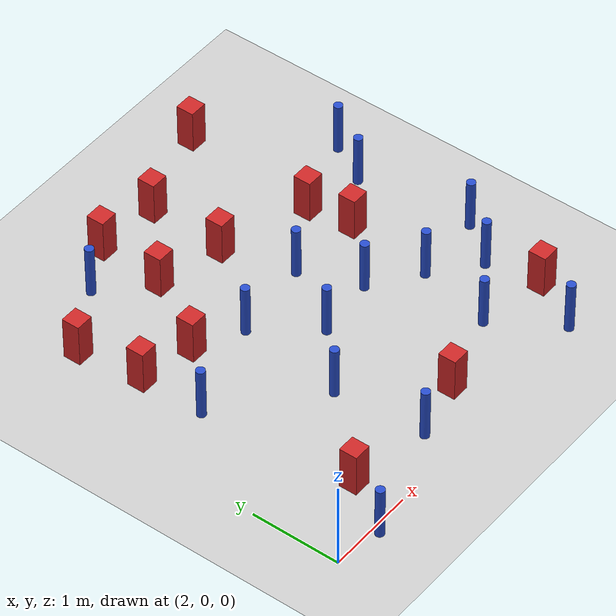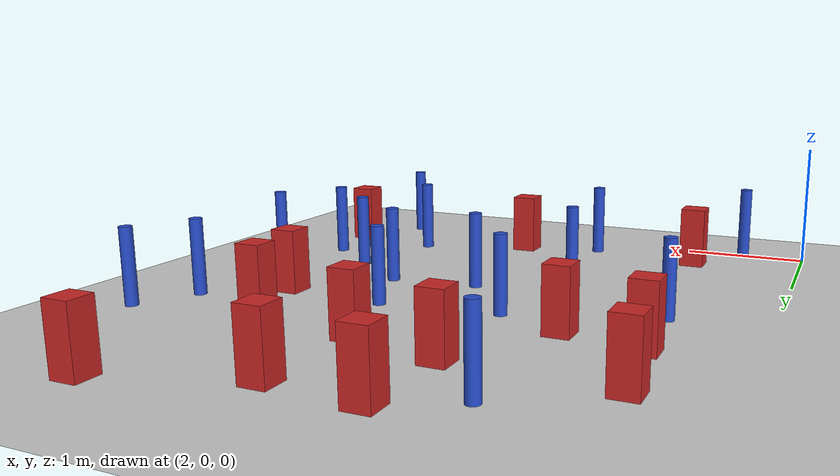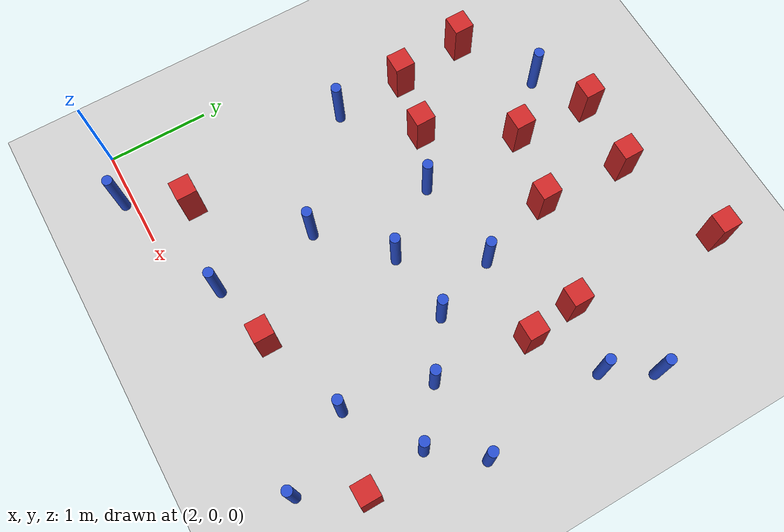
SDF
<sdf version="1.6">
 <world name="default">
  <model name="ground_plane">
   <static>1</static>
   <link name="link">
    <collision name="collision">
     <geometry><plane><normal>0 0 1</normal><size>100 100</size></plane></geometry>
     <surface><friction><ode><mu>100</mu><mu2>50</mu2></ode></friction></surface>
    </collision>
    <visual name="visual">
     <cast_shadows>0</cast_shadows>
     <geometry><plane><normal>0 0 1</normal><size>100 100</size></plane></geometry>
     <material>
      <ambient>1.0 1.0 1.0 1.0</ambient>
      <diffuse>0.8 0.8 0.8 1.0</diffuse>
      <specular>0.01 0.01 0.01 1.000000</specular>
     </material>
    </visual>
   </link>
  </model>
  <model name="square_post_obstacle4">
   <static>true</static>
   <pose>2.62261659096 3.62090149515 8.22691968438e-08 7.2212513382e-06 -7.54495500217e-07 2.29674213826e-05</pose>
   <link name="link">
    <pose>0 0 0.25 0 -0 0</pose>
    <inertial>
     <mass>100</mass>
     <inertia>
      <ixx>0.166667</ixx>
      <ixy>0</ixy>
      <ixz>0</ixz>
      <iyy>0.166667</iyy>
      <iyz>0</iyz>
      <izz>0.166667</izz>
     </inertia>
    </inertial>
    <collision name="collision"><geometry><box><size>.2 .2 .5</size></box></geometry></collision>
    <visual name="visual">
     <geometry><box><size>.2 .2 .5</size></box></geometry>
     <material>
      <script><name>Gazebo/Red</name><uri>file://media/materials/scripts/gazebo.material</uri></script>
     </material>
    </visual>
   </link>
  </model>
  <model name="square_post_obstacle18">
   <static>true</static>
   <pose>2.70620414548 2.89905259573 8.22691968438e-08 7.2212513382e-06 -7.54495500217e-07 2.29674213826e-05</pose>
   <link name="link">
    <pose>0 0 0.25 0 -0 0</pose>
    <inertial>
     <mass>100</mass>
     <inertia>
      <ixx>0.166667</ixx>
      <ixy>0</ixy>
      <ixz>0</ixz>
      <iyy>0.166667</iyy>
      <iyz>0</iyz>
      <izz>0.166667</izz>
     </inertia>
    </inertial>
    <collision name="collision"><geometry><box><size>.2 .2 .5</size></box></geometry></collision>
    <visual name="visual">
     <geometry><box><size>.2 .2 .5</size></box></geometry>
     <material>
      <script><name>Gazebo/Red</name><uri>file://media/materials/scripts/gazebo.material</uri></script>
     </material>
    </visual>
   </link>
  </model>
  <model name="square_post_obstacle21">
   <static>true</static>
   <pose>2.87978851423 0.481293469229 8.22691968438e-08 7.2212513382e-06 -7.54495500217e-07 2.29674213826e-05</pose>
   <link name="link">
    <pose>0 0 0.25 0 -0 0</pose>
    <inertial>
     <mass>100</mass>
     <inertia>
      <ixx>0.166667</ixx>
      <ixy>0</ixy>
      <ixz>0</ixz>
      <iyy>0.166667</iyy>
      <iyz>0</iyz>
      <izz>0.166667</izz>
     </inertia>
    </inertial>
    <collision name="collision"><geometry><box><size>.2 .2 .5</size></box></geometry></collision>
    <visual name="visual">
     <geometry><box><size>.2 .2 .5</size></box></geometry>
     <material>
      <script><name>Gazebo/Red</name><uri>file://media/materials/scripts/gazebo.material</uri></script>
     </material>
    </visual>
   </link>
  </model>
  <model name="pole_obstacle16">
   <static>true</static>
   <pose>5.79698424891 0.0809831116426 2.88873142074e-08 -9.90536689727e-09 4.60219948992e-07 -1.20965994958e-07</pose>
   <link name="link">
    <pose>0 0 0.3 0 -0 0</pose>
    <inertial>
     <mass>1</mass>
     <inertia><ixx>0.145833</ixx><ixy>0</ixy><ixz>0</ixz><iyy>0.145833</iyy><iyz>0</iyz><izz>0.125</izz></inertia>
    </inertial>
    <collision name="collision">
     <geometry><cylinder><radius>0.05</radius><length>.6</length></cylinder></geometry>
    </collision>
    <visual name="visual">
     <geometry><cylinder><radius>0.05</radius><length>.6</length></cylinder></geometry>
     <material>
      <script><name>Gazebo/Blue</name><uri>file://media/materials/scripts/gazebo.material</uri></script>
     </material>
    </visual>
   </link>
  </model>
  <model name="pole_obstacle31">
   <static>true</static>
   <pose>5.54209693001 1.62750616036 2.88873142074e-08 -9.90536689445e-09 4.60219948999e-07 -1.20965994956e-07</pose>
   <link name="link">
    <pose>0 0 0.3 0 -0 0</pose>
    <inertial>
     <mass>1</mass>
     <inertia><ixx>0.145833</ixx><ixy>0</ixy><ixz>0</ixz><iyy>0.145833</iyy><iyz>0</iyz><izz>0.125</izz></inertia>
    </inertial>
    <collision name="collision">
     <geometry><cylinder><radius>0.05</radius><length>.6</length></cylinder></geometry>
    </collision>
    <visual name="visual">
     <geometry><cylinder><radius>0.05</radius><length>.6</length></cylinder></geometry>
     <material>
      <script><name>Gazebo/Blue</name><uri>file://media/materials/scripts/gazebo.material</uri></script>
     </material>
    </visual>
   </link>
  </model>
  <model name="pole_obstacle47">
   <static>true</static>
   <pose>6.20660354552 2.96202624904 2.88873142074e-08 -9.90536690245e-09 4.6021994898e-07 -1.20965994966e-07</pose>
   <link name="link">
    <pose>0 0 0.3 0 -0 0</pose>
    <inertial>
     <mass>1</mass>
     <inertia><ixx>0.145833</ixx><ixy>0</ixy><ixz>0</ixz><iyy>0.145833</iyy><iyz>0</iyz><izz>0.125</izz></inertia>
    </inertial>
    <collision name="collision">
     <geometry><cylinder><radius>0.05</radius><length>.6</length></cylinder></geometry>
    </collision>
    <visual name="visual">
     <geometry><cylinder><radius>0.05</radius><length>.6</length></cylinder></geometry>
     <material>
      <script><name>Gazebo/Blue</name><uri>file://media/materials/scripts/gazebo.material</uri></script>
     </material>
    </visual>
   </link>
  </model>
  <model name="square_post_obstacle50">
   <static>true</static>
   <pose>6.10516463715 0.632587236259 8.22691968438e-08 7.2212513382e-06 -7.54495500217e-07 2.29674213826e-05</pose>
   <link name="link">
    <pose>0 0 0.25 0 -0 0</pose>
    <inertial>
     <mass>100</mass>
     <inertia>
      <ixx>0.166667</ixx>
      <ixy>0</ixy>
      <ixz>0</ixz>
      <iyy>0.166667</iyy>
      <iyz>0</iyz>
      <izz>0.166667</izz>
     </inertia>
    </inertial>
    <collision name="collision"><geometry><box><size>.2 .2 .5</size></box></geometry></collision>
    <visual name="visual">
     <geometry><box><size>.2 .2 .5</size></box></geometry>
     <material>
      <script><name>Gazebo/Red</name><uri>file://media/materials/scripts/gazebo.material</uri></script>
     </material>
    </visual>
   </link>
  </model>
  <model name="pole_obstacle53">
   <static>true</static>
   <pose>6.46365630959 3.40705639726 2.88873142074e-08 -9.90536690245e-09 4.6021994898e-07 -1.20965994966e-07</pose>
   <link name="link">
    <pose>0 0 0.3 0 -0 0</pose>
    <inertial>
     <mass>1</mass>
     <inertia><ixx>0.145833</ixx><ixy>0</ixy><ixz>0</ixz><iyy>0.145833</iyy><iyz>0</iyz><izz>0.125</izz></inertia>
    </inertial>
    <collision name="collision">
     <geometry><cylinder><radius>0.05</radius><length>.6</length></cylinder></geometry>
    </collision>
    <visual name="visual">
     <geometry><cylinder><radius>0.05</radius><length>.6</length></cylinder></geometry>
     <material>
      <script><name>Gazebo/Blue</name><uri>file://media/materials/scripts/gazebo.material</uri></script>
     </material>
    </visual>
   </link>
  </model>
  <model name="pole_obstacle59">
   <static>true</static>
   <pose>3.71259882639 1.35113123196 2.88873142074e-08 -9.90536689395e-09 4.60219949e-07 -1.20965994953e-07</pose>
   <link name="link">
    <pose>0 0 0.3 0 -0 0</pose>
    <inertial>
     <mass>1</mass>
     <inertia><ixx>0.145833</ixx><ixy>0</ixy><ixz>0</ixz><iyy>0.145833</iyy><iyz>0</iyz><izz>0.125</izz></inertia>
    </inertial>
    <collision name="collision">
     <geometry><cylinder><radius>0.05</radius><length>.6</length></cylinder></geometry>
    </collision>
    <visual name="visual">
     <geometry><cylinder><radius>0.05</radius><length>.6</length></cylinder></geometry>
     <material>
      <script><name>Gazebo/Blue</name><uri>file://media/materials/scripts/gazebo.material</uri></script>
     </material>
    </visual>
   </link>
  </model>
  <model name="square_post_obstacle65">
   <static>true</static>
   <pose>3.31616375345 2.77729734283 8.22691968438e-08 7.2212513382e-06 -7.54495500217e-07 2.29674213826e-05</pose>
   <link name="link">
    <pose>0 0 0.25 0 -0 0</pose>
    <inertial>
     <mass>100</mass>
     <inertia>
      <ixx>0.166667</ixx>
      <ixy>0</ixy>
      <ixz>0</ixz>
      <iyy>0.166667</iyy>
      <iyz>0</iyz>
      <izz>0.166667</izz>
     </inertia>
    </inertial>
    <collision name="collision"><geometry><box><size>.2 .2 .5</size></box></geometry></collision>
    <visual name="visual">
     <geometry><box><size>.2 .2 .5</size></box></geometry>
     <material>
      <script><name>Gazebo/Red</name><uri>file://media/materials/scripts/gazebo.material</uri></script>
     </material>
    </visual>
   </link>
  </model>
  <model name="pole_obstacle73">
   <static>true</static>
   <pose>5.03723471642 1.99553160137 2.88873142074e-08 -9.90536689273e-09 4.60219949003e-07 -1.20965994953e-07</pose>
   <link name="link">
    <pose>0 0 0.3 0 -0 0</pose>
    <inertial>
     <mass>1</mass>
     <inertia><ixx>0.145833</ixx><ixy>0</ixy><ixz>0</ixz><iyy>0.145833</iyy><iyz>0</iyz><izz>0.125</izz></inertia>
    </inertial>
    <collision name="collision">
     <geometry><cylinder><radius>0.05</radius><length>.6</length></cylinder></geometry>
    </collision>
    <visual name="visual">
     <geometry><cylinder><radius>0.05</radius><length>.6</length></cylinder></geometry>
     <material>
      <script><name>Gazebo/Blue</name><uri>file://media/materials/scripts/gazebo.material</uri></script>
     </material>
    </visual>
   </link>
  </model>
  <model name="square_post_obstacle80">
   <static>true</static>
   <pose>5.55546648257 3.09088001525 8.22691968438e-08 7.2212513382e-06 -7.54495500217e-07 2.29674213826e-05</pose>
   <link name="link">
    <pose>0 0 0.25 0 -0 0</pose>
    <inertial>
     <mass>100</mass>
     <inertia>
      <ixx>0.166667</ixx>
      <ixy>0</ixy>
      <ixz>0</ixz>
      <iyy>0.166667</iyy>
      <iyz>0</iyz>
      <izz>0.166667</izz>
     </inertia>
    </inertial>
    <collision name="collision"><geometry><box><size>.2 .2 .5</size></box></geometry></collision>
    <visual name="visual">
     <geometry><box><size>.2 .2 .5</size></box></geometry>
     <material>
      <script><name>Gazebo/Red</name><uri>file://media/materials/scripts/gazebo.material</uri></script>
     </material>
    </visual>
   </link>
  </model>
  <model name="pole_obstacle94">
   <static>true</static>
   <pose>4.78990463097 2.6457673171 2.88873142074e-08 -9.90536690245e-09 4.6021994898e-07 -1.20965994966e-07</pose>
   <link name="link">
    <pose>0 0 0.3 0 -0 0</pose>
    <inertial>
     <mass>1</mass>
     <inertia><ixx>0.145833</ixx><ixy>0</ixy><ixz>0</ixz><iyy>0.145833</iyy><iyz>0</iyz><izz>0.125</izz></inertia>
    </inertial>
    <collision name="collision">
     <geometry><cylinder><radius>0.05</radius><length>.6</length></cylinder></geometry>
    </collision>
    <visual name="visual">
     <geometry><cylinder><radius>0.05</radius><length>.6</length></cylinder></geometry>
     <material>
      <script><name>Gazebo/Blue</name><uri>file://media/materials/scripts/gazebo.material</uri></script>
     </material>
    </visual>
   </link>
  </model>
  <model name="pole_obstacle96">
   <static>true</static>
   <pose>5.3490869151 0.785331650575 2.88873142074e-08 -9.90536689837e-09 4.60219948989e-07 -1.2096599496e-07</pose>
   <link name="link">
    <pose>0 0 0.3 0 -0 0</pose>
    <inertial>
     <mass>1</mass>
     <inertia><ixx>0.145833</ixx><ixy>0</ixy><ixz>0</ixz><iyy>0.145833</iyy><iyz>0</iyz><izz>0.125</izz></inertia>
    </inertial>
    <collision name="collision">
     <geometry><cylinder><radius>0.05</radius><length>.6</length></cylinder></geometry>
    </collision>
    <visual name="visual">
     <geometry><cylinder><radius>0.05</radius><length>.6</length></cylinder></geometry>
     <material>
      <script><name>Gazebo/Blue</name><uri>file://media/materials/scripts/gazebo.material</uri></script>
     </material>
    </visual>
   </link>
  </model>
  <model name="square_post_obstacle92">
   <static>true</static>
   <pose>4.59211533059 4.29067833879 8.22691968438e-08 7.2212513382e-06 -7.54495500217e-07 2.29674213826e-05</pose>
   <link name="link">
    <pose>0 0 0.25 0 -0 0</pose>
    <inertial>
     <mass>100</mass>
     <inertia>
      <ixx>0.166667</ixx>
      <ixy>0</ixy>
      <ixz>0</ixz>
      <iyy>0.166667</iyy>
      <iyz>0</iyz>
      <izz>0.166667</izz>
     </inertia>
    </inertial>
    <collision name="collision"><geometry><box><size>.2 .2 .5</size></box></geometry></collision>
    <visual name="visual">
     <geometry><box><size>.2 .2 .5</size></box></geometry>
     <material>
      <script><name>Gazebo/Red</name><uri>file://media/materials/scripts/gazebo.material</uri></script>
     </material>
    </visual>
   </link>
  </model>
  <model name="pole_obstacle108">
   <static>true</static>
   <pose>3.79269333524 0.333719324461 2.88873142074e-08 -9.90536689307e-09 4.60219949002e-07 -1.20965994954e-07</pose>
   <link name="link">
    <pose>0 0 0.3 0 -0 0</pose>
    <inertial>
     <mass>1</mass>
     <inertia><ixx>0.145833</ixx><ixy>0</ixy><ixz>0</ixz><iyy>0.145833</iyy><iyz>0</iyz><izz>0.125</izz></inertia>
    </inertial>
    <collision name="collision">
     <geometry><cylinder><radius>0.05</radius><length>.6</length></cylinder></geometry>
    </collision>
    <visual name="visual">
     <geometry><cylinder><radius>0.05</radius><length>.6</length></cylinder></geometry>
     <material>
      <script><name>Gazebo/Blue</name><uri>file://media/materials/scripts/gazebo.material</uri></script>
     </material>
    </visual>
   </link>
  </model>
  <model name="pole_obstacle113">
   <static>true</static>
   <pose>4.3310178954 1.9167147348 2.88873142074e-08 -9.90536689445e-09 4.60219948999e-07 -1.20965994956e-07</pose>
   <link name="link">
    <pose>0 0 0.3 0 -0 0</pose>
    <inertial>
     <mass>1</mass>
     <inertia><ixx>0.145833</ixx><ixy>0</ixy><ixz>0</ixz><iyy>0.145833</iyy><iyz>0</iyz><izz>0.125</izz></inertia>
    </inertial>
    <collision name="collision">
     <geometry><cylinder><radius>0.05</radius><length>.6</length></cylinder></geometry>
    </collision>
    <visual name="visual">
     <geometry><cylinder><radius>0.05</radius><length>.6</length></cylinder></geometry>
     <material>
      <script><name>Gazebo/Blue</name><uri>file://media/materials/scripts/gazebo.material</uri></script>
     </material>
    </visual>
   </link>
  </model>
  <model name="square_post_obstacle113">
   <static>true</static>
   <pose>4.55620565589 3.40657804077 8.22691968438e-08 7.2212513382e-06 -7.54495500217e-07 2.29674213826e-05</pose>
   <link name="link">
    <pose>0 0 0.25 0 -0 0</pose>
    <inertial>
     <mass>100</mass>
     <inertia>
      <ixx>0.166667</ixx>
      <ixy>0</ixy>
      <ixz>0</ixz>
      <iyy>0.166667</iyy>
      <iyz>0</iyz>
      <izz>0.166667</izz>
     </inertia>
    </inertial>
    <collision name="collision"><geometry><box><size>.2 .2 .5</size></box></geometry></collision>
    <visual name="visual">
     <geometry><box><size>.2 .2 .5</size></box></geometry>
     <material>
      <script><name>Gazebo/Red</name><uri>file://media/materials/scripts/gazebo.material</uri></script>
     </material>
    </visual>
   </link>
  </model>
  <model name="pole_obstacle138">
   <static>true</static>
   <pose>3.85060433284 2.53694885012 2.88873142074e-08 -9.90536690232e-09 4.6021994898e-07 -1.20965994968e-07</pose>
   <link name="link">
    <pose>0 0 0.3 0 -0 0</pose>
    <inertial>
     <mass>1</mass>
     <inertia><ixx>0.145833</ixx><ixy>0</ixy><ixz>0</ixz><iyy>0.145833</iyy><iyz>0</iyz><izz>0.125</izz></inertia>
    </inertial>
    <collision name="collision">
     <geometry><cylinder><radius>0.05</radius><length>.6</length></cylinder></geometry>
    </collision>
    <visual name="visual">
     <geometry><cylinder><radius>0.05</radius><length>.6</length></cylinder></geometry>
     <material>
      <script><name>Gazebo/Blue</name><uri>file://media/materials/scripts/gazebo.material</uri></script>
     </material>
    </visual>
   </link>
  </model>
  <model name="square_post_obstacle128">
   <static>true</static>
   <pose>3.82188614736 3.58661518218 8.22691968438e-08 7.2212513382e-06 -7.54495500217e-07 2.29674213826e-05</pose>
   <link name="link">
    <pose>0 0 0.25 0 -0 0</pose>
    <inertial>
     <mass>100</mass>
     <inertia>
      <ixx>0.166667</ixx>
      <ixy>0</ixy>
      <ixz>0</ixz>
      <iyy>0.166667</iyy>
      <iyz>0</iyz>
      <izz>0.166667</izz>
     </inertia>
    </inertial>
    <collision name="collision"><geometry><box><size>.2 .2 .5</size></box></geometry></collision>
    <visual name="visual">
     <geometry><box><size>.2 .2 .5</size></box></geometry>
     <material>
      <script><name>Gazebo/Red</name><uri>file://media/materials/scripts/gazebo.material</uri></script>
     </material>
    </visual>
   </link>
  </model>
  <model name="square_post_obstacle131">
   <static>true</static>
   <pose>5.61900257603 2.58503649393 8.22691968438e-08 7.2212513382e-06 -7.54495500217e-07 2.29674213826e-05</pose>
   <link name="link">
    <pose>0 0 0.25 0 -0 0</pose>
    <inertial>
     <mass>100</mass>
     <inertia>
      <ixx>0.166667</ixx>
      <ixy>0</ixy>
      <ixz>0</ixz>
      <iyy>0.166667</iyy>
      <iyz>0</iyz>
      <izz>0.166667</izz>
     </inertia>
    </inertial>
    <collision name="collision"><geometry><box><size>.2 .2 .5</size></box></geometry></collision>
    <visual name="visual">
     <geometry><box><size>.2 .2 .5</size></box></geometry>
     <material>
      <script><name>Gazebo/Red</name><uri>file://media/materials/scripts/gazebo.material</uri></script>
     </material>
    </visual>
   </link>
  </model>
  <model name="square_post_obstacle139">
   <static>true</static>
   <pose>3.87147319108 4.34607199502 8.22691968438e-08 7.2212513382e-06 -7.54495500217e-07 2.29674213826e-05</pose>
   <link name="link">
    <pose>0 0 0.25 0 -0 0</pose>
    <inertial>
     <mass>100</mass>
     <inertia>
      <ixx>0.166667</ixx>
      <ixy>0</ixy>
      <ixz>0</ixz>
      <iyy>0.166667</iyy>
      <iyz>0</iyz>
      <izz>0.166667</izz>
     </inertia>
    </inertial>
    <collision name="collision"><geometry><box><size>.2 .2 .5</size></box></geometry></collision>
    <visual name="visual">
     <geometry><box><size>.2 .2 .5</size></box></geometry>
     <material>
      <script><name>Gazebo/Red</name><uri>file://media/materials/scripts/gazebo.material</uri></script>
     </material>
    </visual>
   </link>
  </model>
  <model name="pole_obstacle149">
   <static>true</static>
   <pose>3.35840626471 4.0700780427 2.88873142074e-08 -9.90536689859e-09 4.60219948989e-07 -1.20965994961e-07</pose>
   <link name="link">
    <pose>0 0 0.3 0 -0 0</pose>
    <inertial>
     <mass>1</mass>
     <inertia><ixx>0.145833</ixx><ixy>0</ixy><ixz>0</ixz><iyy>0.145833</iyy><iyz>0</iyz><izz>0.125</izz></inertia>
    </inertial>
    <collision name="collision">
     <geometry><cylinder><radius>0.05</radius><length>.6</length></cylinder></geometry>
    </collision>
    <visual name="visual">
     <geometry><cylinder><radius>0.05</radius><length>.6</length></cylinder></geometry>
     <material>
      <script><name>Gazebo/Blue</name><uri>file://media/materials/scripts/gazebo.material</uri></script>
     </material>
    </visual>
   </link>
  </model>
  <model name="pole_obstacle151">
   <static>true</static>
   <pose>6.0114071119 1.24315573809 2.88873142074e-08 -9.90536689445e-09 4.60219948999e-07 -1.20965994956e-07</pose>
   <link name="link">
    <pose>0 0 0.3 0 -0 0</pose>
    <inertial>
     <mass>1</mass>
     <inertia><ixx>0.145833</ixx><ixy>0</ixy><ixz>0</ixz><iyy>0.145833</iyy><iyz>0</iyz><izz>0.125</izz></inertia>
    </inertial>
    <collision name="collision">
     <geometry><cylinder><radius>0.05</radius><length>.6</length></cylinder></geometry>
    </collision>
    <visual name="visual">
     <geometry><cylinder><radius>0.05</radius><length>.6</length></cylinder></geometry>
     <material>
      <script><name>Gazebo/Blue</name><uri>file://media/materials/scripts/gazebo.material</uri></script>
     </material>
    </visual>
   </link>
  </model>
  <model name="square_post_obstacle144">
   <static>true</static>
   <pose>5.64750855685 4.64398675585 8.22691968438e-08 7.2212513382e-06 -7.54495500217e-07 2.29674213826e-05</pose>
   <link name="link">
    <pose>0 0 0.25 0 -0 0</pose>
    <inertial>
     <mass>100</mass>
     <inertia>
      <ixx>0.166667</ixx>
      <ixy>0</ixy>
      <ixz>0</ixz>
      <iyy>0.166667</iyy>
      <iyz>0</iyz>
      <izz>0.166667</izz>
     </inertia>
    </inertial>
    <collision name="collision"><geometry><box><size>.2 .2 .5</size></box></geometry></collision>
    <visual name="visual">
     <geometry><box><size>.2 .2 .5</size></box></geometry>
     <material>
      <script><name>Gazebo/Red</name><uri>file://media/materials/scripts/gazebo.material</uri></script>
     </material>
    </visual>
   </link>
  </model>
  <model name="pole_obstacle178">
   <static>true</static>
   <pose>2.72139684 2.18449112009 2.88873142074e-08 -9.90536690232e-09 4.6021994898e-07 -1.20965994968e-07</pose>
   <link name="link">
    <pose>0 0 0.3 0 -0 0</pose>
    <inertial>
     <mass>1</mass>
     <inertia><ixx>0.145833</ixx><ixy>0</ixy><ixz>0</ixz><iyy>0.145833</iyy><iyz>0</iyz><izz>0.125</izz></inertia>
    </inertial>
    <collision name="collision">
     <geometry><cylinder><radius>0.05</radius><length>.6</length></cylinder></geometry>
    </collision>
    <visual name="visual">
     <geometry><cylinder><radius>0.05</radius><length>.6</length></cylinder></geometry>
     <material>
      <script><name>Gazebo/Blue</name><uri>file://media/materials/scripts/gazebo.material</uri></script>
     </material>
    </visual>
   </link>
  </model>
  <model name="pole_obstacle195">
   <static>true</static>
   <pose>2.52737888075 -0.0850877106097 2.88873142074e-08 -9.90536689633e-09 4.60219948994e-07 -1.20965994959e-07</pose>
   <link name="link">
    <pose>0 0 0.3 0 -0 0</pose>
    <inertial>
     <mass>1</mass>
     <inertia><ixx>0.145833</ixx><ixy>0</ixy><ixz>0</ixz><iyy>0.145833</iyy><iyz>0</iyz><izz>0.125</izz></inertia>
    </inertial>
    <collision name="collision">
     <geometry><cylinder><radius>0.05</radius><length>.6</length></cylinder></geometry>
    </collision>
    <visual name="visual">
     <geometry><cylinder><radius>0.05</radius><length>.6</length></cylinder></geometry>
     <material>
      <script><name>Gazebo/Blue</name><uri>file://media/materials/scripts/gazebo.material</uri></script>
     </material>
    </visual>
   </link>
  </model>
  <model name="square_post_obstacle215">
   <static>true</static>
   <pose>4.44354229513 0.491929130569 8.22691968438e-08 7.2212513382e-06 -7.54495500217e-07 2.29674213826e-05</pose>
   <link name="link">
    <pose>0 0 0.25 0 -0 0</pose>
    <inertial>
     <mass>100</mass>
     <inertia>
      <ixx>0.166667</ixx>
      <ixy>0</ixy>
      <ixz>0</ixz>
      <iyy>0.166667</iyy>
      <iyz>0</iyz>
      <izz>0.166667</izz>
     </inertia>
    </inertial>
    <collision name="collision"><geometry><box><size>.2 .2 .5</size></box></geometry></collision>
    <visual name="visual">
     <geometry><box><size>.2 .2 .5</size></box></geometry>
     <material>
      <script><name>Gazebo/Red</name><uri>file://media/materials/scripts/gazebo.material</uri></script>
     </material>
    </visual>
   </link>
  </model>
  <model name="pole_obstacle218">
   <static>true</static>
   <pose>6.36605000913 1.69018002041 2.88873142074e-08 -9.90536689408e-09 4.60219948999e-07 -1.20965994956e-07</pose>
   <link name="link">
    <pose>0 0 0.3 0 -0 0</pose>
    <inertial>
     <mass>1</mass>
     <inertia><ixx>0.145833</ixx><ixy>0</ixy><ixz>0</ixz><iyy>0.145833</iyy><iyz>0</iyz><izz>0.125</izz></inertia>
    </inertial>
    <collision name="collision">
     <geometry><cylinder><radius>0.05</radius><length>.6</length></cylinder></geometry>
    </collision>
    <visual name="visual">
     <geometry><cylinder><radius>0.05</radius><length>.6</length></cylinder></geometry>
     <material>
      <script><name>Gazebo/Blue</name><uri>file://media/materials/scripts/gazebo.material</uri></script>
     </material>
    </visual>
   </link>
  </model>
 </world>
</sdf>
